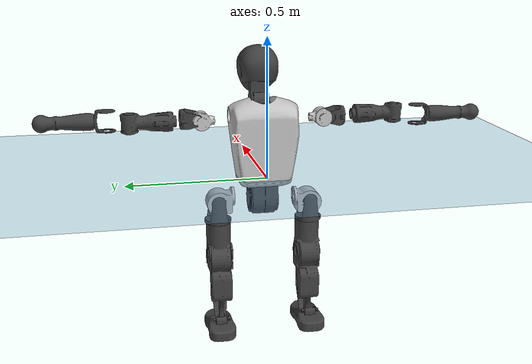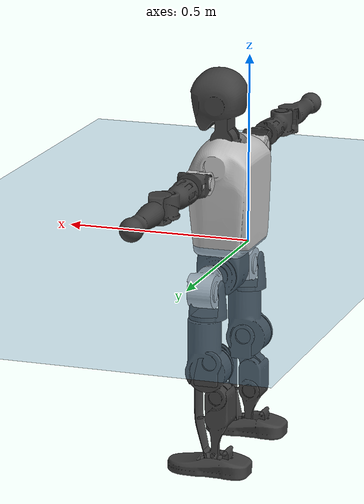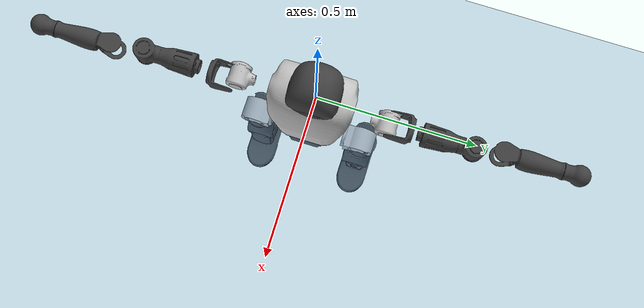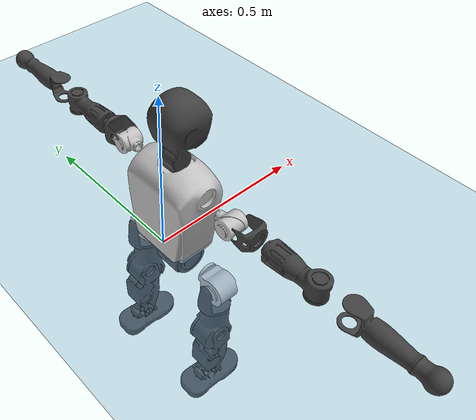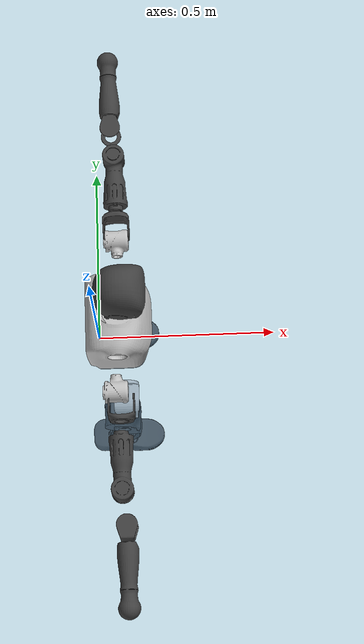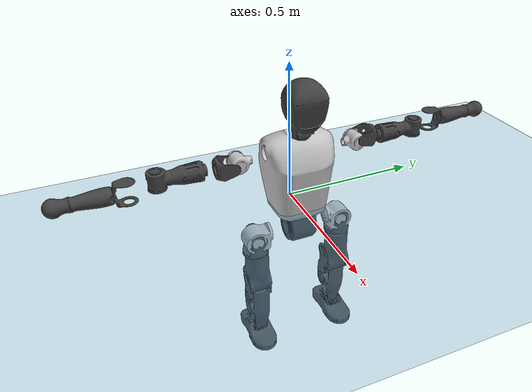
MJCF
<mujoco model="T1">
  <compiler angle="radian" assetdir="assets" balanceinertia="true" inertiafromgeom="false"/>

  <option timestep="0.005" density="1.2" viscosity="2e-05"/>

  <size nkey="1"/>

  <visual>
    <quality shadowsize="8192"/>
    <map shadowclip="0.5"/>
  </visual>

  <default>
    <default class="/">
      <joint armature="0.01" damping="0.01" frictionloss="0.1"/>
      <geom contype="0" conaffinity="0" group="1" solref="-1000 -80"/>
      <site size="0.01 0.005 0.005" group="5"/>
      <general forcelimited="true" biastype="affine" gainprm="25" biasprm="0 -25 -0.6"/>
      <default class="t1">
        <geom rgba="0.25 0.25 0.25 1"/>
        <default class="visual">
          <geom type="mesh" group="2"/>
        </default>
        <default class="collision">
          <geom group="3"/>
        </default>
        <default class="foot">
          <geom size="0.1115 0.05 0.015" type="box" condim="6" group="4" priority="1" solimp="0.015 1 0.015"/>
        </default>
        <default class="reward_collision_sphere">
          <geom group="5" rgba="1 0 0 1"/>
        </default>
      </default>
    </default>
  </default>

  <asset>
    <texture type="skybox" colorspace="auto" name="//unnamed_texture_0" builtin="gradient" rgb1="0.95 0.95 0.95" rgb2="0.95 0.95 0.95" width="100" height="600"/>
    <texture type="2d" colorspace="auto" name="texplane" builtin="checker" rgb1="0.345 0.575 0.748" rgb2="0.345 0.575 0.748" markrgb="1 1 1" width="512" height="512"/>
    <material name="MatPlane" class="/" texture="texplane" texuniform="true" texrepeat="2 2" specular="0.9"/>
    <mesh name="Trunk" class="/" file="Trunk.stl"/>
    <mesh name="H1" class="/" file="H1.stl"/>
    <mesh name="H2" class="/" file="H2.stl"/>
    <mesh name="AL1" class="/" file="AL1.stl"/>
    <mesh name="AL2" class="/" file="AL2.stl"/>
    <mesh name="AL3" class="/" file="AL3.stl"/>
    <mesh name="left_hand_link" class="/" file="left_hand_link.stl"/>
    <mesh name="AR1" class="/" file="AR1.stl"/>
    <mesh name="AR2" class="/" file="AR2.stl"/>
    <mesh name="AR3" class="/" file="AR3.stl"/>
    <mesh name="right_hand_link" class="/" file="right_hand_link.stl"/>
    <mesh name="Waist" class="/" file="Waist.stl"/>
    <mesh name="Hip_Pitch_Left" class="/" file="Hip_Pitch_Left.stl"/>
    <mesh name="Hip_Roll_Left" class="/" file="Hip_Roll_Left.stl"/>
    <mesh name="Hip_Yaw_Left" class="/" file="Hip_Yaw_Left.stl"/>
    <mesh name="Shank_Left" class="/" file="Shank_Left.stl"/>
    <mesh name="Ankle_Cross_Left" class="/" file="Ankle_Cross_Left.stl"/>
    <mesh name="left_foot_link" class="/" file="left_foot_link.stl"/>
    <mesh name="Hip_Pitch_Right" class="/" file="Hip_Pitch_Right.stl"/>
    <mesh name="Hip_Roll_Right" class="/" file="Hip_Roll_Right.stl"/>
    <mesh name="Hip_Yaw_Right" class="/" file="Hip_Yaw_Right.stl"/>
    <mesh name="Shank_Right" class="/" file="Shank_Right.stl"/>
    <mesh name="Ankle_Cross_Right" class="/" file="Ankle_Cross_Right.stl"/>
    <mesh name="right_foot_link" class="/" file="right_foot_link.stl"/>
  </asset>

  <worldbody>
    <geom name="floor" class="/" size="100 100 0.125" type="plane" group="0" material="MatPlane"/>
    <light name="toplight_shadow" class="/" pos="0 0 5" dir="0.0990148 0.0990148 -0.990148" type="directional" ambient="0.04 0.04 0.04" diffuse="0.55 0.55 0.55" specular="0.12 0.12 0.12"/>
    <light name="toplight_fill" class="/" pos="0 0 5" dir="0.0990148 0.0990148 -0.990148" type="directional" castshadow="false" ambient="0.04 0.04 0.04" diffuse="0.3 0.3 0.3" specular="0.08 0.08 0.08"/>
    <body name="trunk" childclass="t1" pos="0.00022338 0.00405556 0.00358546" quat="1 -0.000470971 -0.00017864 0.000363288">
      <inertial pos="0.0452796 -0.0132068 0.0831563" quat="0.999229 0.0257664 -0.00974998 -0.0279755" mass="18.9983" diaginertia="0.0790483 0.8098 0.035234"/>
      <joint name="//unnamed_joint_0" type="free" armature="0" damping="0" frictionloss="0"/>
      <geom name="//unnamed_geom_1" class="visual" rgba="0.76 0.76 0.76 1" mesh="Trunk"/>
      <geom name="//unnamed_geom_2" class="collision" size="0.0859504 0.114601 0.171901" pos="0.0574584 0 0.107427" type="box"/>
      <geom name="//unnamed_geom_3" class="reward_collision_sphere" size="0.131791" pos="0.0574584 0 0.0895228"/>
      <geom name="//unnamed_geom_4" class="reward_collision_sphere" size="0.0171901" pos="0.0574584 0.134738 0"/>
      <geom name="//unnamed_geom_5" class="reward_collision_sphere" size="0.0171901" pos="0.0574584 -0.134738 0"/>
      <geom name="//unnamed_geom_6" class="reward_collision_sphere" size="0.0171901" pos="0.0574584 0.169611 0.161141"/>
      <geom name="//unnamed_geom_7" class="reward_collision_sphere" size="0.0171901" pos="0.0574584 -0.169611 0.161141"/>
      <site name="imu" pos="0.0325624 0.02715 -0.0127899" size="0.0114601"/>
      <camera name="track" pos="0 -3.17029 0" quat="0.707107 0.707107 0 0" mode="trackcom"/>
      <camera name="ego_camera" pos="0.116832 0 0.375996" quat="-0.5 -0.5 0.5 0.5"/>
      <body name="H1" pos="0.0633627 0.0101394 0.206622" quat="1 -4.19607e-05 -1.51865e-06 -5.49822e-05">
        <inertial pos="-0.00177514 -0.0155051 0.0528431" quat="0.78051 -0.0578629 -0.00461794 0.622443" mass="0.735495" diaginertia="0.000204067 0.00247569 8.32545e-05"/>
        <joint name="AAHead_yaw" pos="0 0 0" axis="0.0223431 0.000840647 0.99975" stiffness="0.002268" range="-1.56333 1.79566" armature="0.0105189" damping="0" frictionloss="0.193204"/>
        <geom name="//unnamed_geom_8" class="visual" mesh="H1"/>
        <body name="H2" pos="-0.00263487 0.00378041 0.0652345" quat="1 0.000108568 -0.000312789 -0.000256862">
          <inertial pos="0.010501 0.0134367 0.0922116" quat="0.985409 0.111147 -0.121262 -0.0437176" mass="0.972535" diaginertia="0.00164057 0.0196466 0.000894049"/>
          <joint name="Head_pitch" pos="0 0 0" axis="0.00908336 -0.999939 0.00624074" stiffness="0.0020882" range="-1.23883 0.326309" armature="0.0106309" damping="0" frictionloss="0.157533"/>
          <geom name="//unnamed_geom_9" class="visual" mesh="H2"/>
          <geom name="//unnamed_geom_10" class="collision" size="0.0916804" pos="0.0095764 0 0.0984751"/>
          <geom name="//unnamed_geom_11" class="reward_collision_sphere" size="0.10314" pos="0.0191528 0 0.0895228"/>
        </body>
      </body>
      <body name="AL1" pos="0.063106 0.172 0.202225" quat="0.999985 0.000434105 -0.000278478 0.00549424">
        <inertial pos="-0.000634979 0.0764541 0.00441182" quat="0.550847 0.468418 -0.503922 0.472456" mass="0.801317" diaginertia="0.00106528 0.0112754 0.000171989"/>
        <joint name="Left_Shoulder_Pitch" pos="0 0 0" axis="-0.00209462 0.999988 0.00442549" stiffness="0.00145702" range="-3.34183 1.01872" armature="0.0116008" damping="0.0198162" frictionloss="0.11229"/>
        <geom name="//unnamed_geom_12" class="visual" rgba="0.76 0.76 0.76 1" mesh="AL1"/>
        <body name="AL2" pos="-7.12869e-05 0.0647223 0.00791497" quat="0.999992 0.000644565 -0.0016229 0.00361228">
          <inertial pos="-0.0077518 0.047191 -0.00633691" quat="0.478829 0.566261 -0.456089 0.49199" mass="0.226308" diaginertia="0.000329583 0.00346502 8.7694e-05"/>
          <joint name="Left_Shoulder_Roll" pos="0 0 0" axis="-0.999999 -0.00116104 0.000111047" range="-1.57905 1.73477" armature="0.0107051" damping="0" frictionloss="0.125029"/>
          <geom name="//unnamed_geom_13" class="visual" mesh="AL2"/>
          <body name="AL3" pos="0.00148613 0.0824297 -0.00579554" quat="1 -0.000265888 0.000519179 -0.000498175">
            <inertial pos="0.0120062 0.135968 0.0067163" quat="0.71569 0.697514 -0.00697222 0.0348301" mass="1.2004" diaginertia="0.00941531 0.110299 0.000301951"/>
            <joint name="Left_Elbow_Pitch" pos="0 0 0" axis="0.00224129 -0.999625 -0.0272936" range="-2.29824 2.0357" armature="0.0115304" damping="0" frictionloss="0.107255"/>
            <geom name="//unnamed_geom_14" class="visual" mesh="AL3"/>
            <geom name="//unnamed_geom_15" class="collision" size="0.0343802 0.0859504" pos="0 0.0792574 0" quat="0.707105 0.707108 0 0" type="cylinder"/>
            <geom name="//unnamed_geom_16" class="reward_collision_sphere" size="0.0412562"/>
            <body name="left_hand_link" pos="-0.00517501 0.221581 0.0125572" quat="1 0.000486881 0.000216187 -0.0001074">
              <inertial pos="-0.000130472 0.174006 0.00104102" quat="0.713992 0.700054 0.00941488 0.00707914" mass="0.483394" diaginertia="0.00733568 0.0798643 0.000124054"/>
              <joint name="Left_Elbow_Yaw" pos="0 0 0" axis="-0.00159861 0.0192606 0.999813" range="-2.20917 -0.00255565" armature="0.010154" damping="0.0747682" frictionloss="0.0613064"/>
              <geom name="//unnamed_geom_17" class="visual" mesh="left_hand_link"/>
              <geom name="//unnamed_geom_18" class="collision" size="0.0343802 0.100275" pos="0 0.206069 0" quat="0.707105 0.707108 0 0" type="cylinder"/>
              <geom name="//unnamed_geom_19" class="reward_collision_sphere" size="0.0573003"/>
              <geom name="//unnamed_geom_20" class="reward_collision_sphere" size="0.0401102" pos="0 0.174366 0"/>
              <geom name="//unnamed_geom_21" class="reward_collision_sphere" size="0.0401102" pos="0 0.340807 0"/>
            </body>
          </body>
        </body>
      </body>
      <body name="AR1" pos="0.051478 -0.167703 0.200923" quat="0.999993 -0.000306271 0.000749656 0.0035973">
        <inertial pos="0.0062816 -0.072183 0.0118574" quat="0.513927 0.444636 -0.525607 0.511776" mass="0.656779" diaginertia="0.00103801 0.0113833 0.000142895"/>
        <joint name="Right_Shoulder_Pitch" pos="0 0 0" axis="-0.024846 -0.999577 -0.0151118" range="-1.24557 3.27707" armature="0.0106772" damping="0.0606304" frictionloss="0.185346"/>
        <geom name="//unnamed_geom_22" class="visual" rgba="0.76 0.76 0.76 1" mesh="AR1"/>
        <body name="AR2" pos="0.0117754 -0.072849 -0.00113718" quat="1 0.000238999 -0.000392756 0.000480315">
          <inertial pos="0.0102893 -0.0469451 -0.000899835" quat="0.502425 0.52028 -0.467946 0.507844" mass="0.229706" diaginertia="0.000281502 0.00326117 8.78454e-05"/>
          <joint name="Right_Shoulder_Roll" pos="0 0 0" axis="-0.999264 -0.0232651 -0.0305112" range="-1.75054 1.54937" armature="0.0114588" damping="0.0745986" frictionloss="0.099753"/>
          <geom name="//unnamed_geom_23" class="visual" mesh="AR2"/>
          <body name="AR3" pos="-0.00332784 -0.0982794 0.00448379" quat="0.999994 0.00192969 0.00261453 -0.00137432">
            <inertial pos="-0.00307134 -0.134919 0.00236777" quat="0.714789 0.698434 0.0280498 0.0219079" mass="1.41694" diaginertia="0.00945085 0.136044 0.000342382"/>
            <joint name="Right_Elbow_Pitch" pos="0 0 0" axis="0.0183435 0.999811 -0.00644531" stiffness="0.00127294" range="-2.25718 2.2006" armature="0.0109316" damping="0" frictionloss="0.105561"/>
            <geom name="//unnamed_geom_24" class="visual" mesh="AR3"/>
            <geom name="//unnamed_geom_25" class="collision" size="0.0343802 0.0859504" pos="0 -0.0792574 0" quat="0.707105 0.707108 0 0" type="cylinder"/>
            <geom name="//unnamed_geom_26" class="reward_collision_sphere" size="0.0412562"/>
            <body name="right_hand_link" pos="0.00887328 -0.240458 -0.0128538" quat="0.999993 0.002036 -0.00253253 -0.00195513">
              <inertial pos="0.00208626 -0.181709 -0.00366488" quat="0.711905 0.702256 -0.00411391 -0.00323451" mass="0.470056" diaginertia="0.00591419 0.0730806 0.000121479"/>
              <joint name="Right_Elbow_Yaw" pos="0 0 0" axis="0.00625493 0.00376129 0.999973" range="-0.151195 2.40427" armature="0.0112787" damping="0.0109103" frictionloss="0.0462549"/>
              <geom name="//unnamed_geom_27" class="visual" mesh="right_hand_link"/>
              <geom name="//unnamed_geom_28" class="collision" size="0.0343802 0.100275" pos="0 -0.206069 0" quat="0.707105 0.707108 0 0" type="cylinder"/>
              <geom name="//unnamed_geom_29" class="reward_collision_sphere" size="0.0573003"/>
              <geom name="//unnamed_geom_30" class="reward_collision_sphere" size="0.0401102" pos="0 -0.174366 0"/>
              <geom name="//unnamed_geom_31" class="reward_collision_sphere" size="0.0401102" pos="0 -0.340807 0"/>
            </body>
          </body>
        </body>
      </body>
      <body name="Waist" pos="0.0689625 0.000113549 -0.0917385" quat="0.999998 0.000421426 0.00103157 -0.00148349">
        <inertial pos="0.0162416 -0.00197705 0.00561919" quat="0.983484 0.000636931 -0.180983 0.00197107" mass="4.66864" diaginertia="0.0054455 0.0568807 0.00281048"/>
        <joint name="Waist" pos="0 0 0" axis="-0.0155918 0.00779619 0.999848" stiffness="0.00187437" range="-1.44225 1.60273" armature="0.00721463" damping="0" frictionloss="0.118021"/>
        <geom name="//unnamed_geom_32" class="visual" mesh="Waist"/>
        <body name="Hip_Pitch_Left" pos="-0.000615482 0.161574 0.0100585" quat="1 0.000104341 -0.000478939 -0.000310277">
          <inertial pos="0.00259073 -0.0209889 -0.0242723" quat="0.977268 0.211182 -0.0117359 -0.0145637" mass="1.33016" diaginertia="0.00149984 0.0134234 0.000746556"/>
          <joint name="Left_Hip_Pitch" pos="0 0 0" axis="-0.00240995 0.999963 -0.00823471" range="-1.81983 1.33627" armature="0.00411244" damping="0" frictionloss="0.0922001"/>
          <geom name="//unnamed_geom_33" class="visual" rgba="0.76 0.76 0.76 1" mesh="Hip_Pitch_Left"/>
          <body name="Hip_Roll_Left" pos="-0.0115978 0.0053764 -0.0119406" quat="1 -0.000100377 0.000852977 -0.000398812">
            <inertial pos="0.00693784 -0.00148025 -0.0534989" quat="0.734149 0.0238221 0.0317562 0.677827" mass="0.63587" diaginertia="0.00149687 0.0133592 0.000285952"/>
            <joint name="Left_Hip_Roll" pos="0 0 0" axis="-0.998702 0.00247104 -0.0508652" range="-1.57513 0.160078" armature="0.00482163" damping="0.017028" frictionloss="0.151735"/>
            <geom name="//unnamed_geom_34" class="visual" mesh="Hip_Roll_Left"/>
            <geom name="//unnamed_geom_35" class="reward_collision_sphere" size="0.0630303"/>
            <body name="Hip_Yaw_Left" pos="0.0077465 -0.00265623 -0.0836789" quat="1 -0.000333356 -0.000214923 -0.000222531">
              <inertial pos="0.00338861 -0.00321099 -0.0782263" quat="0.697036 -0.034785 -0.0296797 0.715577" mass="3.32014" diaginertia="0.0202878 0.285887 0.00145733"/>
              <joint name="Left_Hip_Yaw" pos="0 0 0" axis="0.000311728 -0.0069769 -0.999976" range="-0.874418 0.785387" armature="0.0122757" damping="0.0270217" frictionloss="0.10621"/>
              <geom name="//unnamed_geom_36" class="visual" mesh="Hip_Yaw_Left"/>
              <geom name="//unnamed_geom_37" class="collision" size="0.0573003 0.0916804" type="cylinder"/>
              <body name="Shank_Left" pos="-0.0262886 -0.00131508 -0.106003" quat="1 -0.000111152 -0.000220047 0.000295768">
                <inertial pos="-0.00363882 -0.009848 -0.122289" quat="0.997618 0.000821587 -0.0240543 0.0646489" mass="3.00389" diaginertia="0.0279792 0.342778 0.00102185"/>
                <joint name="Left_Knee_Pitch" pos="0 0 0" axis="-0.00205035 0.999996 0.00213969" range="-0.113247 2.44283" armature="0.0109117" damping="0" frictionloss="0.126751"/>
                <geom name="//unnamed_geom_38" class="visual" mesh="Shank_Left"/>
                <geom name="//unnamed_geom_39" class="collision" size="0.0573003 0.0859504" pos="0 0 -0.107427" type="cylinder"/>
                <geom name="//unnamed_geom_40" class="reward_collision_sphere" size="0.0744903"/>
                <body name="Ankle_Cross_Left" pos="-0.000379379 -0.00264547 -0.261338" quat="1 3.51702e-05 2.8488e-07 4.57098e-05">
                  <inertial pos="0.00153238 -0.0086287 -0.0134119" quat="0.46537 0.567778 0.541523 0.409648" mass="0.0973708" diaginertia="2.04697e-05 0.000281386 6.5592e-06"/>
                  <joint name="Left_Ankle_Pitch" pos="0 0 0" axis="0.000809478 1 -0.000287992" range="-1.10439 0.317087" armature="0.0145624" damping="0.0153462" frictionloss="0.0962936"/>
                  <geom name="//unnamed_geom_41" class="visual" mesh="Ankle_Cross_Left"/>
                  <body name="left_foot_link" pos="0.00293212 0.00791896 -0.0189574" quat="0.999996 -0.00245985 -0.000840084 -0.000836371">
                    <inertial pos="0.0087141 -0.000530109 0.00167381" quat="0.00195362 0.609474 0.00728221 0.79277" mass="1.17352" diaginertia="0.00280082 0.0247844 0.00118231"/>
                    <joint name="Left_Ankle_Roll" pos="0 0 0" axis="-1 0.000710088 -0.000299153" stiffness="0.000934155" range="-0.48676 0.438998" armature="0.0120134" damping="0.0167974" frictionloss="0.112945"/>
                    <geom name="//unnamed_geom_42" class="visual" mesh="left_foot_link"/>
                    <geom name="left_foot" class="foot" size="0.0978252 0.0319324 0.0192656" pos="0.0095764 0 -0.0134284"/>
                    <geom name="//unnamed_geom_44" class="reward_collision_sphere" size="0.0595923" pos="0.0095764 0 -0.0134284"/>
                    <geom name="//unnamed_geom_45" class="reward_collision_sphere" size="0.0343802" pos="0.0909758 -0.0364584 -0.0134284"/>
                    <geom name="//unnamed_geom_46" class="reward_collision_sphere" size="0.0343802" pos="-0.0670348 -0.0364584 -0.0134284"/>
                    <site name="left_foot" class="foot" pos="0.0095764 0 -0.0134284" size="0.0114601"/>
                  </body>
                </body>
              </body>
            </body>
          </body>
        </body>
        <body name="Hip_Pitch_Right" pos="0.0015018 -0.171107 -0.00280628" quat="0.999984 -0.000394269 0.00308237 -0.0047227">
          <inertial pos="0.0100712 0.0152878 -0.0267854" quat="0.972225 -0.232455 0.0271019 0.00299107" mass="1.3858" diaginertia="0.00131353 0.0136121 0.000755933"/>
          <joint name="Right_Hip_Pitch" pos="0 0 0" axis="0.00501221 -0.999981 -0.00360858" range="-1.57806 2.05801" armature="0.0158923" damping="0" frictionloss="0.121796"/>
          <geom name="//unnamed_geom_47" class="visual" rgba="0.76 0.76 0.76 1" mesh="Hip_Pitch_Right"/>
          <body name="Hip_Roll_Right" pos="-0.0119998 0.00195727 -0.00909193" quat="0.999996 0.0023323 0.00100657 0.00140823">
            <inertial pos="0.00252223 -0.0038907 -0.0554238" quat="0.679368 -0.0430277 0.0279724 0.732001" mass="0.611412" diaginertia="0.00140909 0.0132731 0.000292552"/>
            <joint name="Right_Hip_Roll" pos="0 0 0" axis="-0.999905 -0.0136967 -0.00139678" range="-0.469502 1.60823" armature="0.0119013" damping="0" frictionloss="0.0798889"/>
            <geom name="//unnamed_geom_48" class="visual" mesh="Hip_Roll_Right"/>
            <geom name="//unnamed_geom_49" class="reward_collision_sphere" size="0.0630303"/>
            <body name="Hip_Yaw_Right" pos="0.00534674 0.00244308 -0.0733795" quat="1 0.000207935 -0.000373765 -2.11917e-05">
              <inertial pos="-0.00458601 0.00603843 -0.0680363" quat="0.725321 -0.0228926 -0.0294624 0.687398" mass="3.08088" diaginertia="0.0202225 0.224098 0.00156262"/>
              <joint name="Right_Hip_Yaw" pos="0 0 0" axis="0.0553523 0.0418022 -0.997591" range="-1.03165 0.944949" armature="0.00553918" damping="0.0667422" frictionloss="0.111924"/>
              <geom name="//unnamed_geom_50" class="visual" mesh="Hip_Yaw_Right"/>
              <geom name="//unnamed_geom_51" class="collision" size="0.0573003 0.0916804" type="cylinder"/>
              <body name="Shank_Right" pos="-0.00807208 -0.000776948 -0.129643" quat="0.999994 -0.00172602 -0.00256051 0.00134005">
                <inertial pos="-0.00798892 0.00165134 -0.100532" quat="0.999277 -0.00116162 -0.0230659 -0.0302114" mass="2.27037" diaginertia="0.0244014 0.314774 0.000930643"/>
                <joint name="Right_Knee_Pitch" pos="0 0 0" axis="-0.0326129 -0.998854 0.0350341" range="-2.57115 -0.0893359" armature="0.00412945" damping="0" frictionloss="0.111207"/>
                <geom name="//unnamed_geom_52" class="visual" mesh="Shank_Right"/>
                <geom name="//unnamed_geom_53" class="collision" size="0.0573003 0.0859504" pos="0 0 -0.107427" type="cylinder"/>
                <geom name="//unnamed_geom_54" class="reward_collision_sphere" size="0.0744903"/>
                <body name="Ankle_Cross_Right" pos="0.00684779 -0.00307955 -0.250856" quat="1 5.52403e-05 0.00012755 -0.000408625">
                  <inertial pos="-0.00499576 0.00739503 -0.00747529" quat="0.440509 0.56147 0.535809 0.451234" mass="0.0965583" diaginertia="2.19269e-05 0.000239853 5.66634e-06"/>
                  <joint name="Right_Ankle_Pitch" pos="0 0 0" axis="0.0282662 -0.999575 -0.00713731" stiffness="0.0498355" range="-0.142523 1.08201" armature="0.0116481" damping="0" frictionloss="0.12584"/>
                  <geom name="//unnamed_geom_55" class="visual" mesh="Ankle_Cross_Right"/>
                  <body name="right_foot_link" pos="-0.0113366 0.000402238 -0.00513061" quat="1 0.000315271 -6.46011e-06 0.000327254">
                    <inertial pos="0.0126481 0.00248461 -0.00708417" quat="-0.00130005 0.620959 -0.00664269 0.783813" mass="1.05792" diaginertia="0.00216492 0.0268887 0.0012787"/>
                    <joint name="Right_Ankle_Roll" pos="0 0 0" axis="-0.999262 -0.0236384 0.0302729" range="-0.196847 0.430754" armature="0.011509" damping="0.0587118" frictionloss="0.109818"/>
                    <geom name="//unnamed_geom_56" class="visual" mesh="right_foot_link"/>
                    <geom name="right_foot" class="foot" size="0.0903647 0.0644777 0.0195511" pos="0.0095764 0 -0.0134284"/>
                    <geom name="//unnamed_geom_58" class="reward_collision_sphere" size="0.0458402"/>
                    <geom name="//unnamed_geom_59" class="reward_collision_sphere" size="0.0343802" pos="0.0095764 0 -0.0134284"/>
                    <geom name="//unnamed_geom_60" class="reward_collision_sphere" size="0.0343802" pos="0.0909758 0.0364584 -0.0134284"/>
                    <geom name="//unnamed_geom_61" class="reward_collision_sphere" size="0.0343802" pos="-0.0670348 0.0364584 -0.0134284"/>
                    <site name="right_foot" class="foot" pos="0.0095764 0 -0.0134284" size="0.0114601"/>
                  </body>
                </body>
              </body>
            </body>
          </body>
        </body>
      </body>
    </body>
  </worldbody>

  <contact>
    <pair class="/" geom1="floor" geom2="left_foot" name="//unnamed_contact_0"/>
    <pair class="/" geom1="floor" geom2="right_foot" name="//unnamed_contact_1"/>
  </contact>

  <actuator>
    <general name="AAHead_yaw" class="/" joint="AAHead_yaw" forcerange="-7.18963 7.18963" gainprm="34.8686" biasprm="0 -34.8686 -0.70088"/>
    <general name="Head_pitch" class="/" joint="Head_pitch" forcerange="-8.06879 8.06879" gainprm="34.8686" biasprm="0 -34.8686 -0.70088"/>
    <general name="Left_Shoulder_Pitch" class="/" joint="Left_Shoulder_Pitch" forcerange="-25.7087 25.7087" gainprm="34.8686" biasprm="0 -34.8686 -0.70088"/>
    <general name="Left_Shoulder_Roll" class="/" joint="Left_Shoulder_Roll" forcerange="-23.1168 23.1168" gainprm="34.8686" biasprm="0 -34.8686 -0.70088"/>
    <general name="Left_Elbow_Pitch" class="/" joint="Left_Elbow_Pitch" forcerange="-21.7 21.7" gainprm="34.8686" biasprm="0 -34.8686 -0.70088"/>
    <general name="Left_Elbow_Yaw" class="/" joint="Left_Elbow_Yaw" forcerange="-23.3468 23.3468" gainprm="34.8686" biasprm="0 -34.8686 -0.70088"/>
    <general name="Right_Shoulder_Pitch" class="/" joint="Right_Shoulder_Pitch" forcerange="-18.1365 18.1365" gainprm="34.8686" biasprm="0 -34.8686 -0.70088"/>
    <general name="Right_Shoulder_Roll" class="/" joint="Right_Shoulder_Roll" forcerange="-25.4376 25.4376" gainprm="34.8686" biasprm="0 -34.8686 -0.70088"/>
    <general name="Right_Elbow_Pitch" class="/" joint="Right_Elbow_Pitch" forcerange="-11.5917 11.5917" gainprm="34.8686" biasprm="0 -34.8686 -0.70088"/>
    <general name="Right_Elbow_Yaw" class="/" joint="Right_Elbow_Yaw" forcerange="-17.6455 17.6455" gainprm="34.8686" biasprm="0 -34.8686 -0.70088"/>
    <general name="Waist" class="/" joint="Waist" forcerange="-29.4204 29.4204" gainprm="34.8686" biasprm="0 -34.8686 -0.70088"/>
    <general name="Left_Hip_Pitch" class="/" joint="Left_Hip_Pitch" forcerange="-53.9171 53.9171" gainprm="34.8686" biasprm="0 -34.8686 -0.70088"/>
    <general name="Left_Hip_Roll" class="/" joint="Left_Hip_Roll" forcerange="-22.7463 22.7463" gainprm="34.8686" biasprm="0 -34.8686 -0.70088"/>
    <general name="Left_Hip_Yaw" class="/" joint="Left_Hip_Yaw" forcerange="-46.9286 46.9286" gainprm="34.8686" biasprm="0 -34.8686 -0.70088"/>
    <general name="Left_Knee_Pitch" class="/" joint="Left_Knee_Pitch" forcerange="-66.4079 66.4079" gainprm="34.8686" biasprm="0 -34.8686 -0.70088"/>
    <general name="Left_Ankle_Pitch" class="/" joint="Left_Ankle_Pitch" forcerange="-21.6116 21.6116" gainprm="34.8686" biasprm="0 -34.8686 -0.70088"/>
    <general name="Left_Ankle_Roll" class="/" joint="Left_Ankle_Roll" forcerange="-10.3395 10.3395" gainprm="34.8686" biasprm="0 -34.8686 -0.70088"/>
    <general name="Right_Hip_Pitch" class="/" joint="Right_Hip_Pitch" forcerange="-51.5698 51.5698" gainprm="34.8686" biasprm="0 -34.8686 -0.70088"/>
    <general name="Right_Hip_Roll" class="/" joint="Right_Hip_Roll" forcerange="-36.2089 36.2089" gainprm="34.8686" biasprm="0 -34.8686 -0.70088"/>
    <general name="Right_Hip_Yaw" class="/" joint="Right_Hip_Yaw" forcerange="-18.625 18.625" gainprm="34.8686" biasprm="0 -34.8686 -0.70088"/>
    <general name="Right_Knee_Pitch" class="/" joint="Right_Knee_Pitch" forcerange="-68.985 68.985" gainprm="34.8686" biasprm="0 -34.8686 -0.70088"/>
    <general name="Right_Ankle_Pitch" class="/" joint="Right_Ankle_Pitch" forcerange="-24.2988 24.2988" gainprm="34.8686" biasprm="0 -34.8686 -0.70088"/>
    <general name="Right_Ankle_Roll" class="/" joint="Right_Ankle_Roll" forcerange="-21.5737 21.5737" gainprm="34.8686" biasprm="0 -34.8686 -0.70088"/>
  </actuator>

  <sensor>
    <gyro site="imu" name="imu_angular_velocity"/>
    <velocimeter site="imu" name="imu_linear_velocity"/>
    <framelinvel objtype="site" objname="left_foot" name="left_foot_global_linear_velocity"/>
    <framelinvel objtype="site" objname="right_foot" name="right_foot_global_linear_velocity"/>
  </sensor>

  <keyframe>
    <key name="home" qpos="0 0 0.6385 1 0 0 0 0 0 0 1.4 0 -0.4 0 -1.4 0 0.4 0 -0.4 0 0 0.8 -0.4 0 0.4 0 0 -0.8 0.4 0"/>
  </keyframe>
</mujoco>
